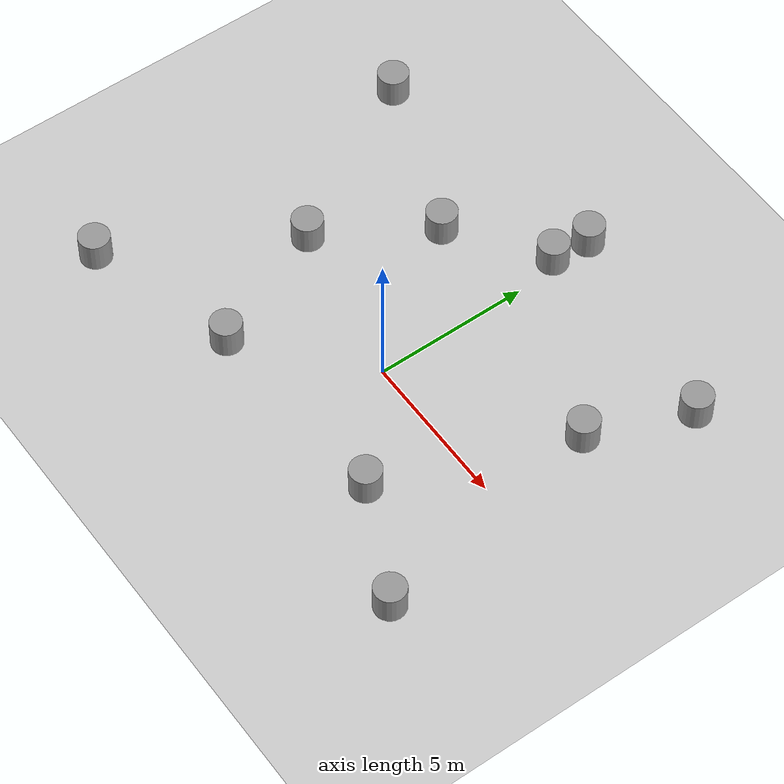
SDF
<sdf version="1.6">
 <world name="default">
  <light name="sun" type="directional">
   <pose>0 0 10 0 -0 0</pose>
   <diffuse>0.8 0.8 0.8 1</diffuse>
   <specular>0.2 0.2 0.2 1</specular>
   <attenuation>
    <range>1000</range>
    <constant>0.9</constant>
    <linear>0.01</linear>
    <quadratic>0.001</quadratic>
   </attenuation>
   <direction>-0.5 0.1 -0.9</direction>
  </light>
  <model name="ground_plane">
   <static>1</static>
   <link name="link">
    <collision name="collision">
     <geometry><plane><normal>0 0 1</normal><size>100 100</size></plane></geometry>
     <surface>
      <contact><collide_bitmask>65535</collide_bitmask></contact>
      <friction><ode><mu>100</mu><mu2>50</mu2></ode></friction>
     </surface>
    </collision>
    <visual name="visual">
     <cast_shadows>0</cast_shadows>
     <geometry><plane><normal>0 0 1</normal><size>100 100</size></plane></geometry>
     <material>
      <script><uri>file://media/materials/scripts/gazebo.material</uri><name>Gazebo/Grey</name></script>
     </material>
    </visual>
   </link>
  </model>
  <gravity>0 0 -9.8</gravity>
  <magnetic_field>6e-06 2.3e-05 -4.2e-05</magnetic_field>
  <atmosphere type="adiabatic"/>
  <physics name="default_physics" default="0" type="ode">
   <max_step_size>0.001</max_step_size>
   <real_time_factor>1</real_time_factor>
   <real_time_update_rate>1000</real_time_update_rate>
  </physics>
  <scene><ambient>0.4 0.4 0.4 1</ambient><background>0.7 0.7 0.7 1</background><shadows>1</shadows></scene>
  <spherical_coordinates>
   <surface_model>EARTH_WGS84</surface_model>
   <latitude_deg>0</latitude_deg>
   <longitude_deg>0</longitude_deg>
   <elevation>0</elevation>
   <heading_deg>0</heading_deg>
  </spherical_coordinates>
  <model name="unit_cylinder">
   <pose>-3.1755 4.46624 0.499998 3e-06 -3e-06 0</pose>
   <link name="link">
    <inertial>
     <mass>1</mass>
     <inertia><ixx>0.145833</ixx><ixy>0</ixy><ixz>0</ixz><iyy>0.145833</iyy><iyz>0</iyz><izz>0.125</izz></inertia>
    </inertial>
    <collision name="collision">
     <geometry><cylinder><radius>0.5</radius><length>1</length></cylinder></geometry>
    </collision>
    <visual name="visual">
     <geometry><cylinder><radius>0.5</radius><length>1</length></cylinder></geometry>
     <material>
      <script><name>Gazebo/Grey</name><uri>file://media/materials/scripts/gazebo.material</uri></script>
     </material>
    </visual>
   </link>
  </model>
  <model name="unit_cylinder_0">
   <pose>-5.29846 1.02832 0.499998 3e-06 -3e-06 0</pose>
   <link name="link">
    <inertial>
     <mass>1</mass>
     <inertia><ixx>0.145833</ixx><ixy>0</ixy><ixz>0</ixz><iyy>0.145833</iyy><iyz>0</iyz><izz>0.125</izz></inertia>
    </inertial>
    <collision name="collision">
     <geometry><cylinder><radius>0.5</radius><length>1</length></cylinder></geometry>
    </collision>
    <visual name="visual">
     <geometry><cylinder><radius>0.5</radius><length>1</length></cylinder></geometry>
     <material>
      <script><name>Gazebo/Grey</name><uri>file://media/materials/scripts/gazebo.material</uri></script>
     </material>
    </visual>
   </link>
  </model>
  <model name="unit_cylinder_1">
   <pose>-3.55208 -3.08187 0.499998 3e-06 -3e-06 0</pose>
   <link name="link">
    <inertial>
     <mass>1</mass>
     <inertia><ixx>0.145833</ixx><ixy>0</ixy><ixz>0</ixz><iyy>0.145833</iyy><iyz>0</iyz><izz>0.125</izz></inertia>
    </inertial>
    <collision name="collision">
     <geometry><cylinder><radius>0.5</radius><length>1</length></cylinder></geometry>
    </collision>
    <visual name="visual">
     <geometry><cylinder><radius>0.5</radius><length>1</length></cylinder></geometry>
     <material>
      <script><name>Gazebo/Grey</name><uri>file://media/materials/scripts/gazebo.material</uri></script>
     </material>
    </visual>
   </link>
  </model>
  <model name="unit_cylinder_2">
   <pose>3.00089 -2.75074 0.499998 3e-06 -3e-06 0</pose>
   <link name="link">
    <inertial>
     <mass>1</mass>
     <inertia><ixx>0.145833</ixx><ixy>0</ixy><ixz>0</ixz><iyy>0.145833</iyy><iyz>0</iyz><izz>0.125</izz></inertia>
    </inertial>
    <collision name="collision">
     <geometry><cylinder><radius>0.5</radius><length>1</length></cylinder></geometry>
    </collision>
    <visual name="visual">
     <geometry><cylinder><radius>0.5</radius><length>1</length></cylinder></geometry>
     <material>
      <script><name>Gazebo/Grey</name><uri>file://media/materials/scripts/gazebo.material</uri></script>
     </material>
    </visual>
   </link>
  </model>
  <model name="unit_cylinder_3">
   <pose>5.25369 3.29259 0.499998 3e-06 -3e-06 0</pose>
   <link name="link">
    <inertial>
     <mass>1</mass>
     <inertia><ixx>0.145833</ixx><ixy>0</ixy><ixz>0</ixz><iyy>0.145833</iyy><iyz>0</iyz><izz>0.125</izz></inertia>
    </inertial>
    <collision name="collision">
     <geometry><cylinder><radius>0.5</radius><length>1</length></cylinder></geometry>
    </collision>
    <visual name="visual">
     <geometry><cylinder><radius>0.5</radius><length>1</length></cylinder></geometry>
     <material>
      <script><name>Gazebo/Grey</name><uri>file://media/materials/scripts/gazebo.material</uri></script>
     </material>
    </visual>
   </link>
  </model>
  <model name="unit_cylinder_4">
   <pose>-0.287263 6.47453 0.499998 3e-06 -3e-06 0</pose>
   <link name="link">
    <inertial>
     <mass>1</mass>
     <inertia><ixx>0.145833</ixx><ixy>0</ixy><ixz>0</ixz><iyy>0.145833</iyy><iyz>0</iyz><izz>0.125</izz></inertia>
    </inertial>
    <collision name="collision">
     <geometry><cylinder><radius>0.5</radius><length>1</length></cylinder></geometry>
    </collision>
    <visual name="visual">
     <geometry><cylinder><radius>0.5</radius><length>1</length></cylinder></geometry>
     <material>
      <script><name>Gazebo/Grey</name><uri>file://media/materials/scripts/gazebo.material</uri></script>
     </material>
    </visual>
   </link>
  </model>
  <model name="unit_cylinder_1_clone">
   <pose>-8.47992 -4.49405 0.499992 -3e-06 4e-06 0</pose>
   <link name="link">
    <inertial>
     <mass>1</mass>
     <inertia><ixx>0.145833</ixx><ixy>0</ixy><ixz>0</ixz><iyy>0.145833</iyy><iyz>0</iyz><izz>0.125</izz></inertia>
    </inertial>
    <collision name="collision">
     <geometry><cylinder><radius>0.5</radius><length>1</length></cylinder></geometry>
    </collision>
    <visual name="visual">
     <geometry><cylinder><radius>0.5</radius><length>1</length></cylinder></geometry>
     <material>
      <script><name>Gazebo/Grey</name><uri>file://media/materials/scripts/gazebo.material</uri></script>
     </material>
    </visual>
   </link>
  </model>
  <model name="unit_cylinder_1_clone_0">
   <pose>6.5305 -4.44594 0.499998 3e-06 4e-06 -0</pose>
   <link name="link">
    <inertial>
     <mass>1</mass>
     <inertia><ixx>0.145833</ixx><ixy>0</ixy><ixz>0</ixz><iyy>0.145833</iyy><iyz>0</iyz><izz>0.125</izz></inertia>
    </inertial>
    <collision name="collision">
     <geometry><cylinder><radius>0.5</radius><length>1</length></cylinder></geometry>
    </collision>
    <visual name="visual">
     <geometry><cylinder><radius>0.5</radius><length>1</length></cylinder></geometry>
     <material>
      <script><name>Gazebo/Grey</name><uri>file://media/materials/scripts/gazebo.material</uri></script>
     </material>
    </visual>
   </link>
  </model>
  <model name="unit_cylinder_1_clone_1">
   <pose>6.49082 6.45602 0.499997 3e-06 4e-06 -0</pose>
   <link name="link">
    <inertial>
     <mass>1</mass>
     <inertia><ixx>0.145833</ixx><ixy>0</ixy><ixz>0</ixz><iyy>0.145833</iyy><iyz>0</iyz><izz>0.125</izz></inertia>
    </inertial>
    <collision name="collision">
     <geometry><cylinder><radius>0.5</radius><length>1</length></cylinder></geometry>
    </collision>
    <visual name="visual">
     <geometry><cylinder><radius>0.5</radius><length>1</length></cylinder></geometry>
     <material>
      <script><name>Gazebo/Grey</name><uri>file://media/materials/scripts/gazebo.material</uri></script>
     </material>
    </visual>
   </link>
  </model>
  <model name="unit_cylinder_1_clone_2">
   <pose>-8.44982 6.47818 0.499997 3e-06 4e-06 -0</pose>
   <link name="link">
    <inertial>
     <mass>1</mass>
     <inertia><ixx>0.145833</ixx><ixy>0</ixy><ixz>0</ixz><iyy>0.145833</iyy><iyz>0</iyz><izz>0.125</izz></inertia>
    </inertial>
    <collision name="collision">
     <geometry><cylinder><radius>0.5</radius><length>1</length></cylinder></geometry>
    </collision>
    <visual name="visual">
     <geometry><cylinder><radius>0.5</radius><length>1</length></cylinder></geometry>
     <material>
      <script><name>Gazebo/Grey</name><uri>file://media/materials/scripts/gazebo.material</uri></script>
     </material>
    </visual>
   </link>
  </model>
  <model name="unit_cylinder_4_clone">
   <pose>-0.209546 7.74898 0.499997 3e-06 4e-06 -0</pose>
   <link name="link">
    <inertial>
     <mass>1</mass>
     <inertia><ixx>0.145833</ixx><ixy>0</ixy><ixz>0</ixz><iyy>0.145833</iyy><iyz>0</iyz><izz>0.125</izz></inertia>
    </inertial>
    <collision name="collision">
     <geometry><cylinder><radius>0.5</radius><length>1</length></cylinder></geometry>
    </collision>
    <visual name="visual">
     <geometry><cylinder><radius>0.5</radius><length>1</length></cylinder></geometry>
     <material>
      <script><name>Gazebo/Grey</name><uri>file://media/materials/scripts/gazebo.material</uri></script>
     </material>
    </visual>
   </link>
  </model>
 </world>
</sdf>
